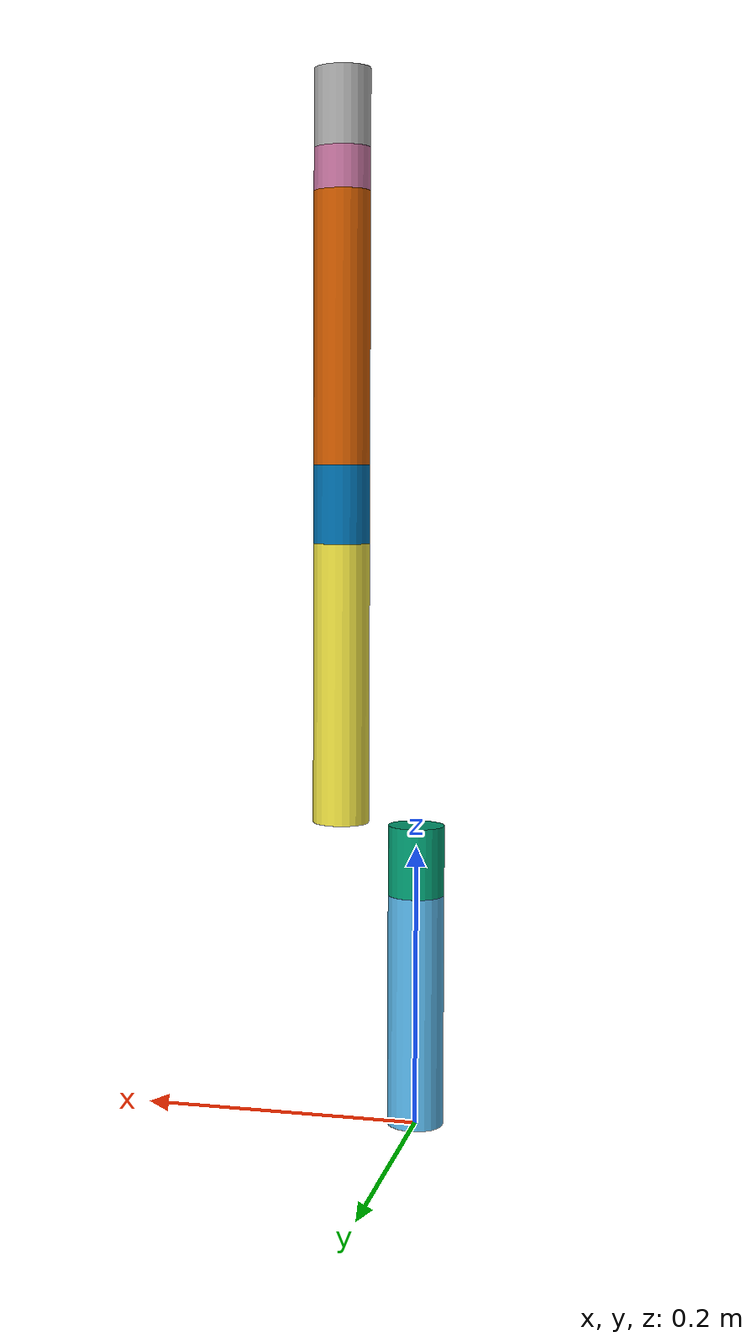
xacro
<?xml version="1.0"?>
<robot name="episode1_mock" xmlns:xacro="http://www.ros.org/wiki/xacro">
  <xacro:arg name="backend" default="mock"/>
  <xacro:arg name="host" default="127.0.0.1"/>
  <xacro:arg name="port" default="12345"/>
  <xacro:include filename="$(find episode_ros2_control)/urdf/episode_ros2_control.xacro"/>

  <xacro:property name="pi" value="3.141592653589793"/>
  <xacro:macro name="stick" params="name length">
    <link name="${name}">
      <visual>
        <origin xyz="0 0 ${length/2}"/>
        <geometry><cylinder radius="0.02" length="${length}"/></geometry>
      </visual>
      <inertial><mass value="0.3"/><inertia ixx="1e-3" iyy="1e-3" izz="1e-3" ixy="0" ixz="0" iyz="0"/></inertial>
    </link>
  </xacro:macro>

  <link name="world"/>
  <xacro:stick name="base_link" length="0.166"/>
  <xacro:stick name="link1" length="0.05"/>
  <xacro:stick name="link2" length="0.200"/>
  <xacro:stick name="link3" length="0.056"/>
  <xacro:stick name="link4" length="0.192"/>
  <xacro:stick name="link5" length="0.03"/>
  <xacro:stick name="link6" length="0.055"/>

  <joint name="world_fixed" type="fixed"><parent link="world"/><child link="base_link"/></joint>

  <!-- limits in model radians = ros_model(motor range) -->
  <joint name="joint1" type="revolute">
    <parent link="base_link"/><child link="link1"/>
    <origin xyz="0 0 0.166"/><axis xyz="0 0 1"/>
    <limit lower="${-180*pi/180}" upper="${160*pi/180}" effort="10" velocity="1.0"/>
  </joint>
  <joint name="joint2" type="revolute">
    <parent link="link1"/><child link="link2"/>
    <origin xyz="0.055 0 0.05"/><axis xyz="0 1 0"/>
    <limit lower="${-90*pi/180}" upper="${90*pi/180}" effort="10" velocity="1.0"/>
  </joint>
  <joint name="joint3" type="revolute">
    <parent link="link2"/><child link="link3"/>
    <origin xyz="0 0 0.200"/><axis xyz="0 1 0"/>
    <limit lower="${-83*pi/180}" upper="${80*pi/180}" effort="10" velocity="1.0"/>
  </joint>
  <joint name="joint4" type="revolute">
    <parent link="link3"/><child link="link4"/>
    <origin xyz="0 0 0.056"/><axis xyz="0 0 1"/>
    <limit lower="${-30*pi/180}" upper="${305*pi/180}" effort="5" velocity="1.5"/>
  </joint>
  <joint name="joint5" type="revolute">
    <parent link="link4"/><child link="link5"/>
    <origin xyz="0 0 0.192"/><axis xyz="0 1 0"/>
    <limit lower="${-110*pi/180}" upper="${110*pi/180}" effort="5" velocity="1.5"/>
  </joint>
  <joint name="joint6" type="revolute">
    <parent link="link5"/><child link="link6"/>
    <origin xyz="0 0 0.03"/><axis xyz="0 0 1"/>
    <limit lower="${-30*pi/180}" upper="${305*pi/180}" effort="2" velocity="2.0"/>
  </joint>

  <xacro:episode_ros2_control name="Episode1System" backend="$(arg backend)" host="$(arg host)" port="$(arg port)"/>
</robot>
